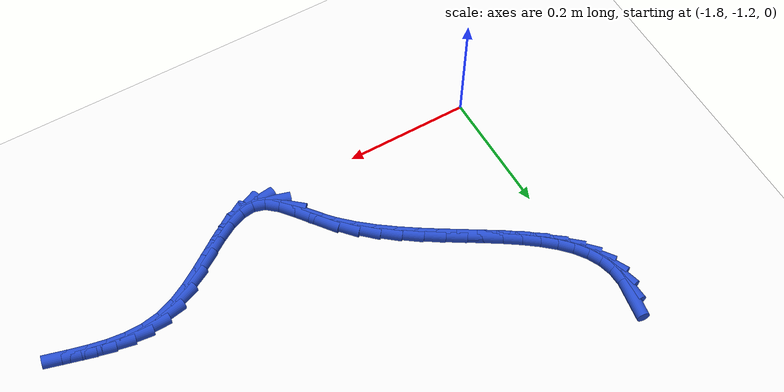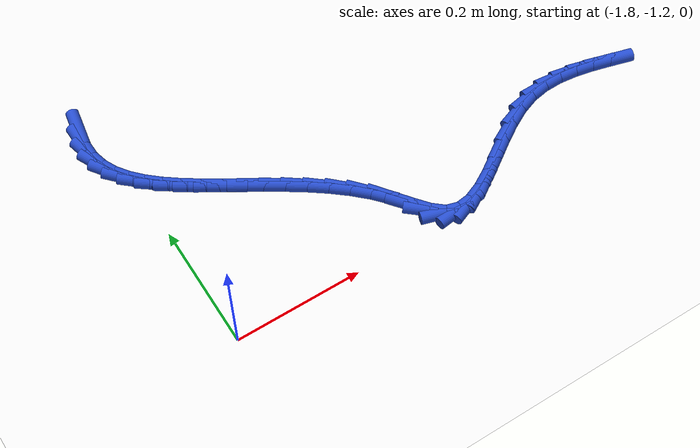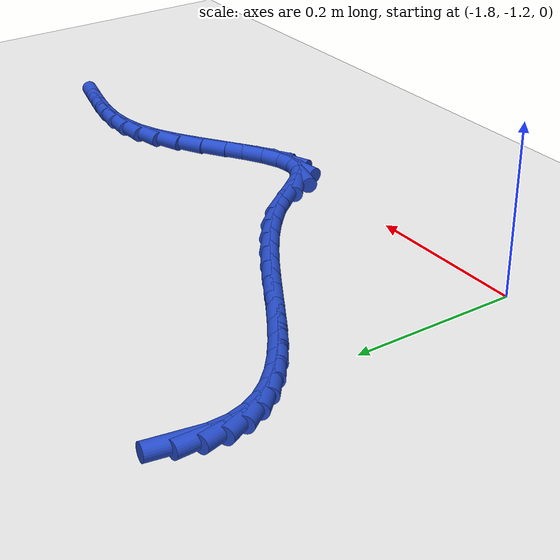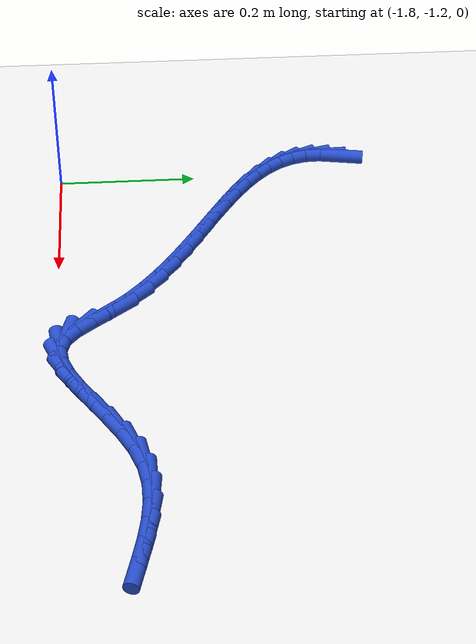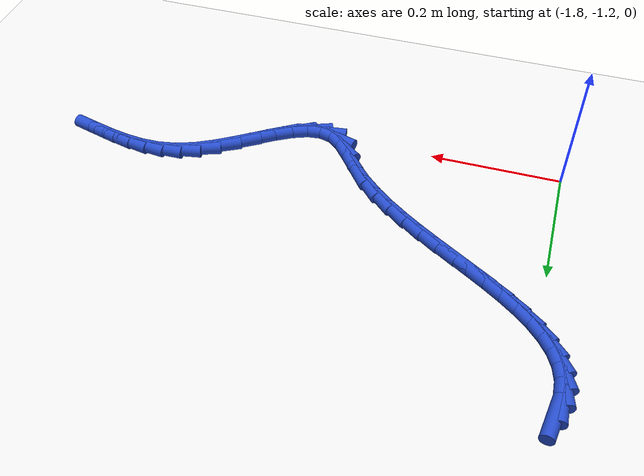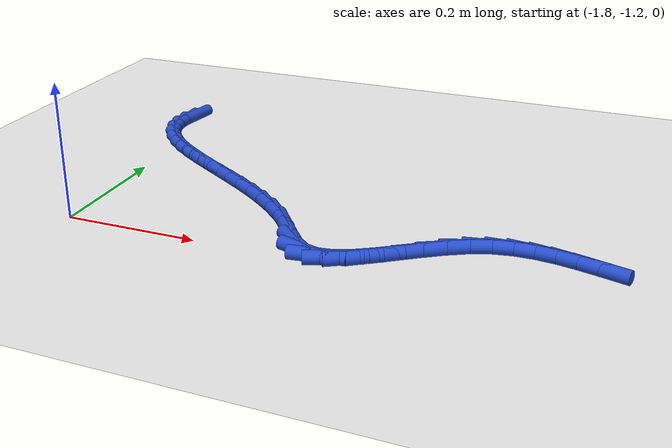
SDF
<sdf version="1.6">
 <world name="default">
  <model name="ground_plane">
   <static>1</static>
   <link name="link">
    <collision name="collision">
     <geometry><plane><normal>0 0 1</normal><size>100 100</size></plane></geometry>
     <surface><friction><ode><mu>100</mu><mu2>50</mu2></ode></friction></surface>
    </collision>
    <visual name="visual">
     <cast_shadows>0</cast_shadows>
     <geometry><plane><normal>0 0 1</normal><size>100 100</size></plane></geometry>
     <material>
      <script><uri>file://media/materials/scripts/gazebo.material</uri><name>Gazebo/WhiteGlow</name></script>
     </material>
    </visual>
   </link>
  </model>
  <model name="line">
   <link name="link_178">
    <pose>-1.8325129046262127 -0.779563238345765 0.01 0 1.57 1.405693355400828</pose>
    <collision name="collision">
     <geometry><cylinder><radius>0.01</radius><length>0.08</length></cylinder></geometry>
    </collision>
    <visual name="visual">
     <material>
      <script><name>Gazebo/Blue</name><uri>file://media/materials/scripts/gazebo.material</uri></script>
     </material>
     <geometry><cylinder><radius>0.01</radius><length>0.08</length></cylinder></geometry>
    </visual>
   </link>
   <link name="link_179">
    <pose>-1.8366914875160778 -0.8046418041200128 0.01 0 1.57 -1.5342874279638012</pose>
    <collision name="collision">
     <geometry><cylinder><radius>0.01</radius><length>0.08</length></cylinder></geometry>
    </collision>
    <visual name="visual">
     <material>
      <script><name>Gazebo/Blue</name><uri>file://media/materials/scripts/gazebo.material</uri></script>
     </material>
     <geometry><cylinder><radius>0.01</radius><length>0.08</length></cylinder></geometry>
    </visual>
   </link>
   <link name="link_180">
    <pose>-1.8358413575190278 -0.8279170131243322 0.01 0 1.57 -1.3180017869610425</pose>
    <collision name="collision">
     <geometry><cylinder><radius>0.01</radius><length>0.08</length></cylinder></geometry>
    </collision>
    <visual name="visual">
     <material>
      <script><name>Gazebo/Blue</name><uri>file://media/materials/scripts/gazebo.material</uri></script>
     </material>
     <geometry><cylinder><radius>0.01</radius><length>0.08</length></cylinder></geometry>
    </visual>
   </link>
   <link name="link_181">
    <pose>-1.8302526899253178 -0.8495516149770044 0.01 0 1.57 -1.116973838957514</pose>
    <collision name="collision">
     <geometry><cylinder><radius>0.01</radius><length>0.08</length></cylinder></geometry>
    </collision>
    <visual name="visual">
     <material>
      <script><name>Gazebo/Blue</name><uri>file://media/materials/scripts/gazebo.material</uri></script>
     </material>
     <geometry><cylinder><radius>0.01</radius><length>0.08</length></cylinder></geometry>
    </visual>
   </link>
   <link name="link_182">
    <pose>-1.8203923275570963 -0.8697664615010166 0.01 0 1.57 -0.9476835056262635</pose>
    <collision name="collision">
     <geometry><cylinder><radius>0.01</radius><length>0.08</length></cylinder></geometry>
    </collision>
    <visual name="visual">
     <material>
      <script><name>Gazebo/Blue</name><uri>file://media/materials/scripts/gazebo.material</uri></script>
     </material>
     <geometry><cylinder><radius>0.01</radius><length>0.08</length></cylinder></geometry>
    </visual>
   </link>
   <link name="link_183">
    <pose>-1.8067271132365128 -0.8887824045193586 0.01 0 1.57 -0.8149168403468379</pose>
    <collision name="collision">
     <geometry><cylinder><radius>0.01</radius><length>0.08</length></cylinder></geometry>
    </collision>
    <visual name="visual">
     <material>
      <script><name>Gazebo/Blue</name><uri>file://media/materials/scripts/gazebo.material</uri></script>
     </material>
     <geometry><cylinder><radius>0.01</radius><length>0.08</length></cylinder></geometry>
    </visual>
   </link>
   <link name="link_184">
    <pose>-1.7897238897857157 -0.9068202958550189 0.01 0 1.57 -0.7157038609472247</pose>
    <collision name="collision">
     <geometry><cylinder><radius>0.01</radius><length>0.08</length></cylinder></geometry>
    </collision>
    <visual name="visual">
     <material>
      <script><name>Gazebo/Blue</name><uri>file://media/materials/scripts/gazebo.material</uri></script>
     </material>
     <geometry><cylinder><radius>0.01</radius><length>0.08</length></cylinder></geometry>
    </visual>
   </link>
   <link name="link_185">
    <pose>-1.7698495000268561 -0.9241009873309871 0.01 0 1.57 -0.6445146439186612</pose>
    <collision name="collision">
     <geometry><cylinder><radius>0.01</radius><length>0.08</length></cylinder></geometry>
    </collision>
    <visual name="visual">
     <material>
      <script><name>Gazebo/Blue</name><uri>file://media/materials/scripts/gazebo.material</uri></script>
     </material>
     <geometry><cylinder><radius>0.01</radius><length>0.08</length></cylinder></geometry>
    </visual>
   </link>
   <link name="link_186">
    <pose>-1.7475707867820809 -0.9408453307702509 0.01 0 1.57 -0.5960981901841402</pose>
    <collision name="collision">
     <geometry><cylinder><radius>0.01</radius><length>0.08</length></cylinder></geometry>
    </collision>
    <visual name="visual">
     <material>
      <script><name>Gazebo/Blue</name><uri>file://media/materials/scripts/gazebo.material</uri></script>
     </material>
     <geometry><cylinder><radius>0.01</radius><length>0.08</length></cylinder></geometry>
    </visual>
   </link>
   <link name="link_187">
    <pose>-1.7233545928735405 -0.9572741779958 0.01 0 1.57 -0.5663976658382914</pose>
    <collision name="collision">
     <geometry><cylinder><radius>0.01</radius><length>0.08</length></cylinder></geometry>
    </collision>
    <visual name="visual">
     <material>
      <script><name>Gazebo/Blue</name><uri>file://media/materials/scripts/gazebo.material</uri></script>
     </material>
     <geometry><cylinder><radius>0.01</radius><length>0.08</length></cylinder></geometry>
    </visual>
   </link>
   <link name="link_188">
    <pose>-1.697667761123383 -0.9736083808306222 0.01 0 1.57 -0.5526166626310506</pose>
    <collision name="collision">
     <geometry><cylinder><radius>0.01</radius><length>0.08</length></cylinder></geometry>
    </collision>
    <visual name="visual">
     <material>
      <script><name>Gazebo/Blue</name><uri>file://media/materials/scripts/gazebo.material</uri></script>
     </material>
     <geometry><cylinder><radius>0.01</radius><length>0.08</length></cylinder></geometry>
    </visual>
   </link>
   <link name="link_189">
    <pose>-1.6709771343537585 -0.9900687910977072 0.01 0 1.57 -0.5530400077132408</pose>
    <collision name="collision">
     <geometry><cylinder><radius>0.01</radius><length>0.08</length></cylinder></geometry>
    </collision>
    <visual name="visual">
     <material>
      <script><name>Gazebo/Blue</name><uri>file://media/materials/scripts/gazebo.material</uri></script>
     </material>
     <geometry><cylinder><radius>0.01</radius><length>0.08</length></cylinder></geometry>
    </visual>
   </link>
   <link name="link_190">
    <pose>-1.643749555386815 -1.0068762606200439 0.01 0 1.57 -0.566836750045288</pose>
    <collision name="collision">
     <geometry><cylinder><radius>0.01</radius><length>0.08</length></cylinder></geometry>
    </collision>
    <visual name="visual">
     <material>
      <script><name>Gazebo/Blue</name><uri>file://media/materials/scripts/gazebo.material</uri></script>
     </material>
     <geometry><cylinder><radius>0.01</radius><length>0.08</length></cylinder></geometry>
    </visual>
   </link>
   <link name="link_191">
    <pose>-1.6164518670447032 -1.02425164122062 0.01 0 1.57 -0.5939028505514997</pose>
    <collision name="collision">
     <geometry><cylinder><radius>0.01</radius><length>0.08</length></cylinder></geometry>
    </collision>
    <visual name="visual">
     <material>
      <script><name>Gazebo/Blue</name><uri>file://media/materials/scripts/gazebo.material</uri></script>
     </material>
     <geometry><cylinder><radius>0.01</radius><length>0.08</length></cylinder></geometry>
    </visual>
   </link>
   <link name="link_192">
    <pose>-1.5895509121495714 -1.042415784722425 0.01 0 1.57 -0.6347359713803196</pose>
    <collision name="collision">
     <geometry><cylinder><radius>0.01</radius><length>0.08</length></cylinder></geometry>
    </collision>
    <visual name="visual">
     <material>
      <script><name>Gazebo/Blue</name><uri>file://media/materials/scripts/gazebo.material</uri></script>
     </material>
     <geometry><cylinder><radius>0.01</radius><length>0.08</length></cylinder></geometry>
    </visual>
   </link>
   <link name="link_193">
    <pose>-1.5635135335235688 -1.0615895429484472 0.01 0 1.57 -0.6903051706491075</pose>
    <collision name="collision">
     <geometry><cylinder><radius>0.01</radius><length>0.08</length></cylinder></geometry>
    </collision>
    <visual name="visual">
     <material>
      <script><name>Gazebo/Blue</name><uri>file://media/materials/scripts/gazebo.material</uri></script>
     </material>
     <geometry><cylinder><radius>0.01</radius><length>0.08</length></cylinder></geometry>
    </visual>
   </link>
   <link name="link_194">
    <pose>-1.5388065739888448 -1.0819937677216762 0.01 0 1.57 -0.7618540101544419</pose>
    <collision name="collision">
     <geometry><cylinder><radius>0.01</radius><length>0.08</length></cylinder></geometry>
    </collision>
    <visual name="visual">
     <material>
      <script><name>Gazebo/Blue</name><uri>file://media/materials/scripts/gazebo.material</uri></script>
     </material>
     <geometry><cylinder><radius>0.01</radius><length>0.08</length></cylinder></geometry>
    </visual>
   </link>
   <link name="link_195">
    <pose>-1.515896876367548 -1.1038493108651 0.01 0 1.57 -0.8505100666377784</pose>
    <collision name="collision">
     <geometry><cylinder><radius>0.01</radius><length>0.08</length></cylinder></geometry>
    </collision>
    <visual name="visual">
     <material>
      <script><name>Gazebo/Blue</name><uri>file://media/materials/scripts/gazebo.material</uri></script>
     </material>
     <geometry><cylinder><radius>0.01</radius><length>0.08</length></cylinder></geometry>
    </visual>
   </link>
   <link name="link_196">
    <pose>-1.4952506732276953 -1.1273757502962625 0.01 0 1.57 -0.9258052567998458</pose>
    <collision name="collision">
     <geometry><cylinder><radius>0.01</radius><length>0.08</length></cylinder></geometry>
    </collision>
    <visual name="visual">
     <material>
      <script><name>Gazebo/Blue</name><uri>file://media/materials/scripts/gazebo.material</uri></script>
     </material>
     <geometry><cylinder><radius>0.01</radius><length>0.08</length></cylinder></geometry>
    </visual>
   </link>
   <link name="link_197">
    <pose>-1.4768652408321588 -1.151813717688814 0.01 0 1.57 -0.8976872025446448</pose>
    <collision name="collision">
     <geometry><cylinder><radius>0.01</radius><length>0.08</length></cylinder></geometry>
    </collision>
    <visual name="visual">
     <material>
      <script><name>Gazebo/Blue</name><uri>file://media/materials/scripts/gazebo.material</uri></script>
     </material>
     <geometry><cylinder><radius>0.01</radius><length>0.08</length></cylinder></geometry>
    </visual>
   </link>
   <link name="link_198">
    <pose>-1.4594321328299977 -1.1736781488800625 0.01 0 1.57 -0.7052259614447751</pose>
    <collision name="collision">
     <geometry><cylinder><radius>0.01</radius><length>0.08</length></cylinder></geometry>
    </collision>
    <visual name="visual">
     <material>
      <script><name>Gazebo/Blue</name><uri>file://media/materials/scripts/gazebo.material</uri></script>
     </material>
     <geometry><cylinder><radius>0.01</radius><length>0.08</length></cylinder></geometry>
    </visual>
   </link>
   <link name="link_199">
    <pose>-1.4414174525688253 -1.1890133522237687 0.01 0 1.57 -0.2854877616649825</pose>
    <collision name="collision">
     <geometry><cylinder><radius>0.01</radius><length>0.08</length></cylinder></geometry>
    </collision>
    <visual name="visual">
     <material>
      <script><name>Gazebo/Blue</name><uri>file://media/materials/scripts/gazebo.material</uri></script>
     </material>
     <geometry><cylinder><radius>0.01</radius><length>0.08</length></cylinder></geometry>
    </visual>
   </link>
   <link name="link_200">
    <pose>-1.4215821567903846 -1.1948351168048248 0.01 0 1.57 0.12768300200854196</pose>
    <collision name="collision">
     <geometry><cylinder><radius>0.01</radius><length>0.08</length></cylinder></geometry>
    </collision>
    <visual name="visual">
     <material>
      <script><name>Gazebo/Blue</name><uri>file://media/materials/scripts/gazebo.material</uri></script>
     </material>
     <geometry><cylinder><radius>0.01</radius><length>0.08</length></cylinder></geometry>
    </visual>
   </link>
   <link name="link_201">
    <pose>-1.3998672758785617 -1.1920473294119003 0.01 0 1.57 0.38704310711077033</pose>
    <collision name="collision">
     <geometry><cylinder><radius>0.01</radius><length>0.08</length></cylinder></geometry>
    </collision>
    <visual name="visual">
     <material>
      <script><name>Gazebo/Blue</name><uri>file://media/materials/scripts/gazebo.material</uri></script>
     </material>
     <geometry><cylinder><radius>0.01</radius><length>0.08</length></cylinder></geometry>
    </visual>
   </link>
   <link name="link_202">
    <pose>-1.3765090237365276 -1.1825264452586606 0.01 0 1.57 0.5259942591566726</pose>
    <collision name="collision">
     <geometry><cylinder><radius>0.01</radius><length>0.08</length></cylinder></geometry>
    </collision>
    <visual name="visual">
     <material>
      <script><name>Gazebo/Blue</name><uri>file://media/materials/scripts/gazebo.material</uri></script>
     </material>
     <geometry><cylinder><radius>0.01</radius><length>0.08</length></cylinder></geometry>
    </visual>
   </link>
   <link name="link_203">
    <pose>-1.351743614267455 -1.1681489195587773 0.01 0 1.57 0.5897838168073916</pose>
    <collision name="collision">
     <geometry><cylinder><radius>0.01</radius><length>0.08</length></cylinder></geometry>
    </collision>
    <visual name="visual">
     <material>
      <script><name>Gazebo/Blue</name><uri>file://media/materials/scripts/gazebo.material</uri></script>
     </material>
     <geometry><cylinder><radius>0.01</radius><length>0.08</length></cylinder></geometry>
    </visual>
   </link>
   <link name="link_204">
    <pose>-1.3258072613745169 -1.1507912075259221 0.01 0 1.57 0.6019732672010306</pose>
    <collision name="collision">
     <geometry><cylinder><radius>0.01</radius><length>0.08</length></cylinder></geometry>
    </collision>
    <visual name="visual">
     <material>
      <script><name>Gazebo/Blue</name><uri>file://media/materials/scripts/gazebo.material</uri></script>
     </material>
     <geometry><cylinder><radius>0.01</radius><length>0.08</length></cylinder></geometry>
    </visual>
   </link>
   <link name="link_205">
    <pose>-1.2989361789608853 -1.1323297643737662 0.01 0 1.57 0.5704491095683816</pose>
    <collision name="collision">
     <geometry><cylinder><radius>0.01</radius><length>0.08</length></cylinder></geometry>
    </collision>
    <visual name="visual">
     <material>
      <script><name>Gazebo/Blue</name><uri>file://media/materials/scripts/gazebo.material</uri></script>
     </material>
     <geometry><cylinder><radius>0.01</radius><length>0.08</length></cylinder></geometry>
    </visual>
   </link>
   <link name="link_206">
    <pose>-1.2713665809297332 -1.1146410453159825 0.01 0 1.57 0.49243126926786185</pose>
    <collision name="collision">
     <geometry><cylinder><radius>0.01</radius><length>0.08</length></cylinder></geometry>
    </collision>
    <visual name="visual">
     <material>
      <script><name>Gazebo/Blue</name><uri>file://media/materials/scripts/gazebo.material</uri></script>
     </material>
     <geometry><cylinder><radius>0.01</radius><length>0.08</length></cylinder></geometry>
    </visual>
   </link>
   <link name="link_207">
    <pose>-1.2433346811842336 -1.099601505566242 0.01 0 1.57 0.35655322250122234</pose>
    <collision name="collision">
     <geometry><cylinder><radius>0.01</radius><length>0.08</length></cylinder></geometry>
    </collision>
    <visual name="visual">
     <material>
      <script><name>Gazebo/Blue</name><uri>file://media/materials/scripts/gazebo.material</uri></script>
     </material>
     <geometry><cylinder><radius>0.01</radius><length>0.08</length></cylinder></geometry>
    </visual>
   </link>
   <link name="link_208">
    <pose>-1.2150759632719188 -1.0890759011889044 0.01 0 1.57 0.17933155911861273</pose>
    <collision name="collision">
     <geometry><cylinder><radius>0.01</radius><length>0.08</length></cylinder></geometry>
    </collision>
    <visual name="visual">
     <material>
      <script><name>Gazebo/Blue</name><uri>file://media/materials/scripts/gazebo.material</uri></script>
     </material>
     <geometry><cylinder><radius>0.01</radius><length>0.08</length></cylinder></geometry>
    </visual>
   </link>
   <link name="link_209">
    <pose>-1.1867643952868974 -1.0839436073796842 0.01 0 1.57 0.020388134347156424</pose>
    <collision name="collision">
     <geometry><cylinder><radius>0.01</radius><length>0.08</length></cylinder></geometry>
    </collision>
    <visual name="visual">
     <material>
      <script><name>Gazebo/Blue</name><uri>file://media/materials/scripts/gazebo.material</uri></script>
     </material>
     <geometry><cylinder><radius>0.01</radius><length>0.08</length></cylinder></geometry>
    </visual>
   </link>
   <link name="link_210">
    <pose>-1.1584667307775742 -1.0833665908410952 0.01 0 1.57 -0.10475288035518548</pose>
    <collision name="collision">
     <geometry><cylinder><radius>0.01</radius><length>0.08</length></cylinder></geometry>
    </collision>
    <visual name="visual">
     <material>
      <script><name>Gazebo/Blue</name><uri>file://media/materials/scripts/gazebo.material</uri></script>
     </material>
     <geometry><cylinder><radius>0.01</radius><length>0.08</length></cylinder></geometry>
    </visual>
   </link>
   <link name="link_211">
    <pose>-1.1302389592083266 -1.0863343945694302 0.01 0 1.57 -0.19334758745046984</pose>
    <collision name="collision">
     <geometry><cylinder><radius>0.01</radius><length>0.08</length></cylinder></geometry>
    </collision>
    <visual name="visual">
     <material>
      <script><name>Gazebo/Blue</name><uri>file://media/materials/scripts/gazebo.material</uri></script>
     </material>
     <geometry><cylinder><radius>0.01</radius><length>0.08</length></cylinder></geometry>
    </visual>
   </link>
   <link name="link_212">
    <pose>-1.1021370700435316 -1.0918365615609835 0.01 0 1.57 -0.24653103064962292</pose>
    <collision name="collision">
     <geometry><cylinder><radius>0.01</radius><length>0.08</length></cylinder></geometry>
    </collision>
    <visual name="visual">
     <material>
      <script><name>Gazebo/Blue</name><uri>file://media/materials/scripts/gazebo.material</uri></script>
     </material>
     <geometry><cylinder><radius>0.01</radius><length>0.08</length></cylinder></geometry>
    </visual>
   </link>
   <link name="link_213">
    <pose>-1.0742170527475667 -1.098862634812048 0.01 0 1.57 -0.26591052454640807</pose>
    <collision name="collision">
     <geometry><cylinder><radius>0.01</radius><length>0.08</length></cylinder></geometry>
    </collision>
    <visual name="visual">
     <material>
      <script><name>Gazebo/Blue</name><uri>file://media/materials/scripts/gazebo.material</uri></script>
     </material>
     <geometry><cylinder><radius>0.01</radius><length>0.08</length></cylinder></geometry>
    </visual>
   </link>
  </model>
 </world>
</sdf>
